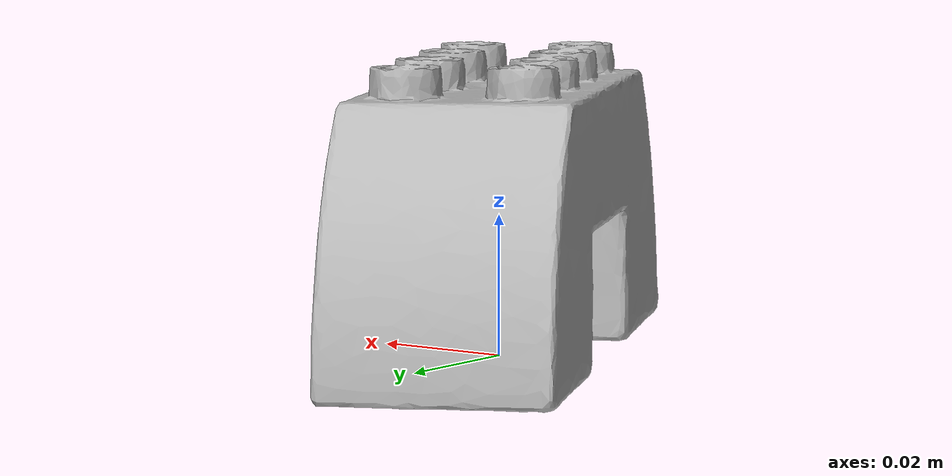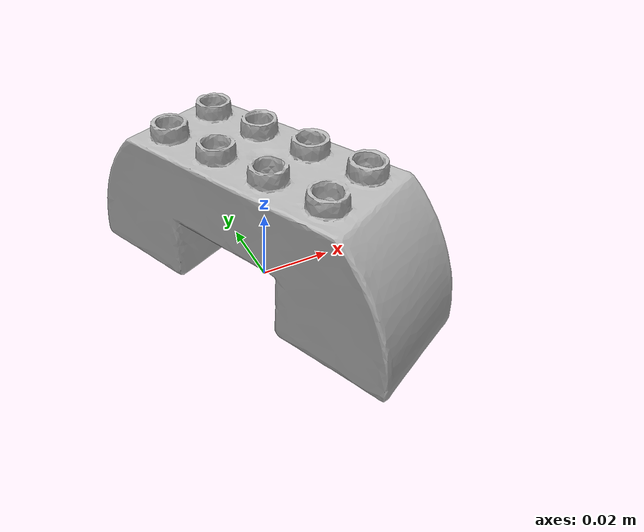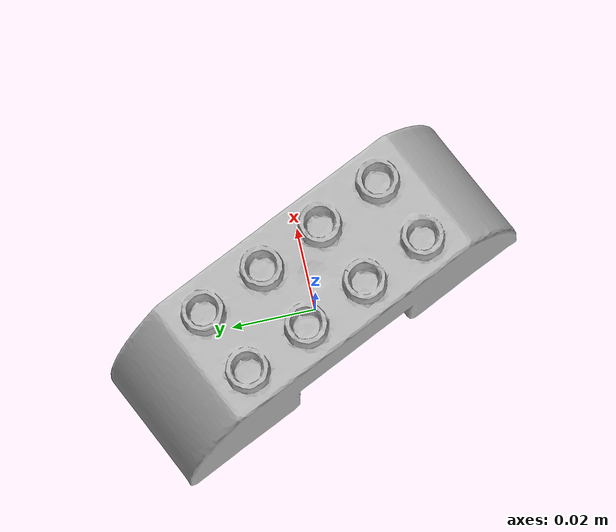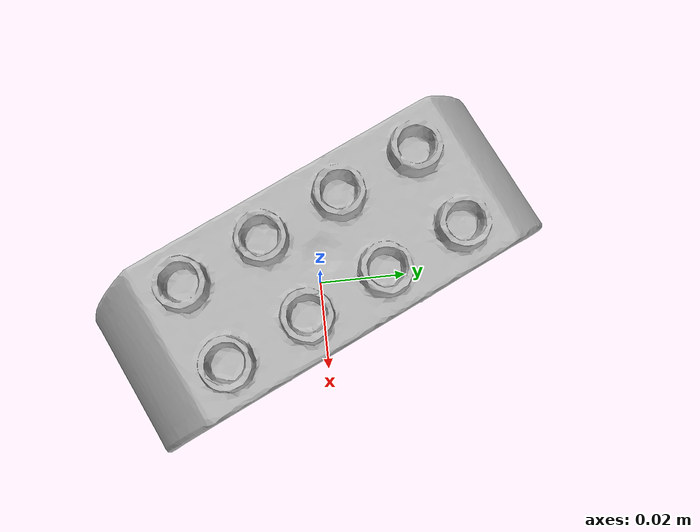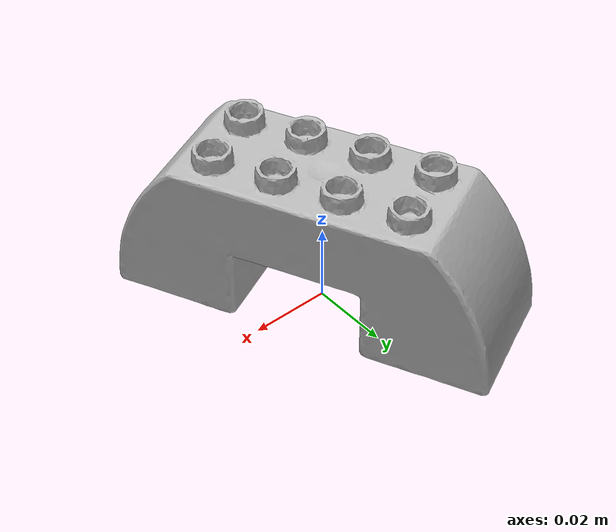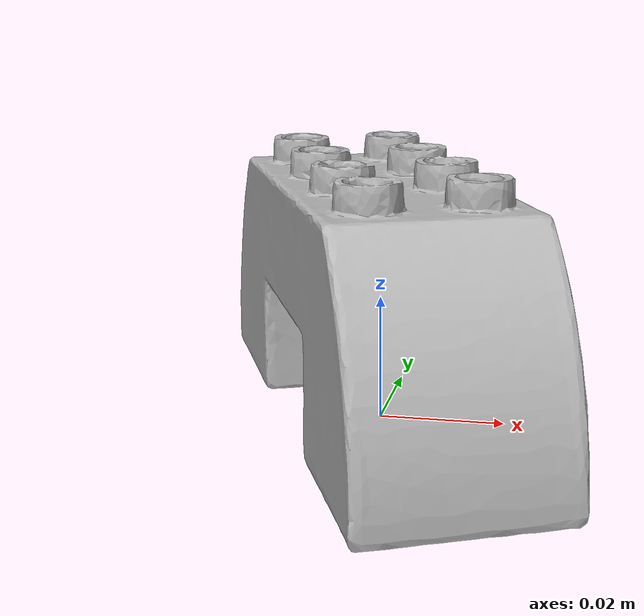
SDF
<?xml version="1.0" ?>
<sdf version='1.8'>
  <model name='ycb_073-e_lego_duplo'>
    <link name='body'>
      <inertial>
        <mass>0.0813001912</mass>
        <pose>0.000118158798 0.000139409481 0.0239092853 0 0 0</pose>
        <inertia>
          <ixx>5.96436418406e-05</ixx>
          <ixy>2.07093549225e-05</ixy>
          <ixz>-4.15790867701e-08</ixz>
          <iyy>2.48882945018e-05</iyy>
          <iyz>1.62470179056e-07</iyz>
          <izz>6.91816660825e-05</izz>
        </inertia>
      </inertial>
      <visual name='ycb_073-e_lego_duplo_visual'>
        <pose>0.023325 0.050265 0.000204 0 0 0</pose>
        <geometry>
          <mesh>
            <uri>model://ycb_073-e_lego_duplo/meshes/textured.dae</uri>
          </mesh>
        </geometry>
      </visual>
      <collision name='ycb_073-e_lego_duplo_collision'>
        <pose>0.023325 0.050265 0.000204 0 0 0</pose>
        <geometry>
          <mesh>
            <uri>model://ycb_073-e_lego_duplo/meshes/nontextured.stl</uri>
          </mesh>
        </geometry>
        <max_contacts>10</max_contacts>
        <surface>
          <contact>
            <ode>
              <kp>1e15</kp>
              <kd>1e13</kd>
            </ode>
          </contact>
        </surface>
      </collision>
    </link>
  </model>
</sdf>
